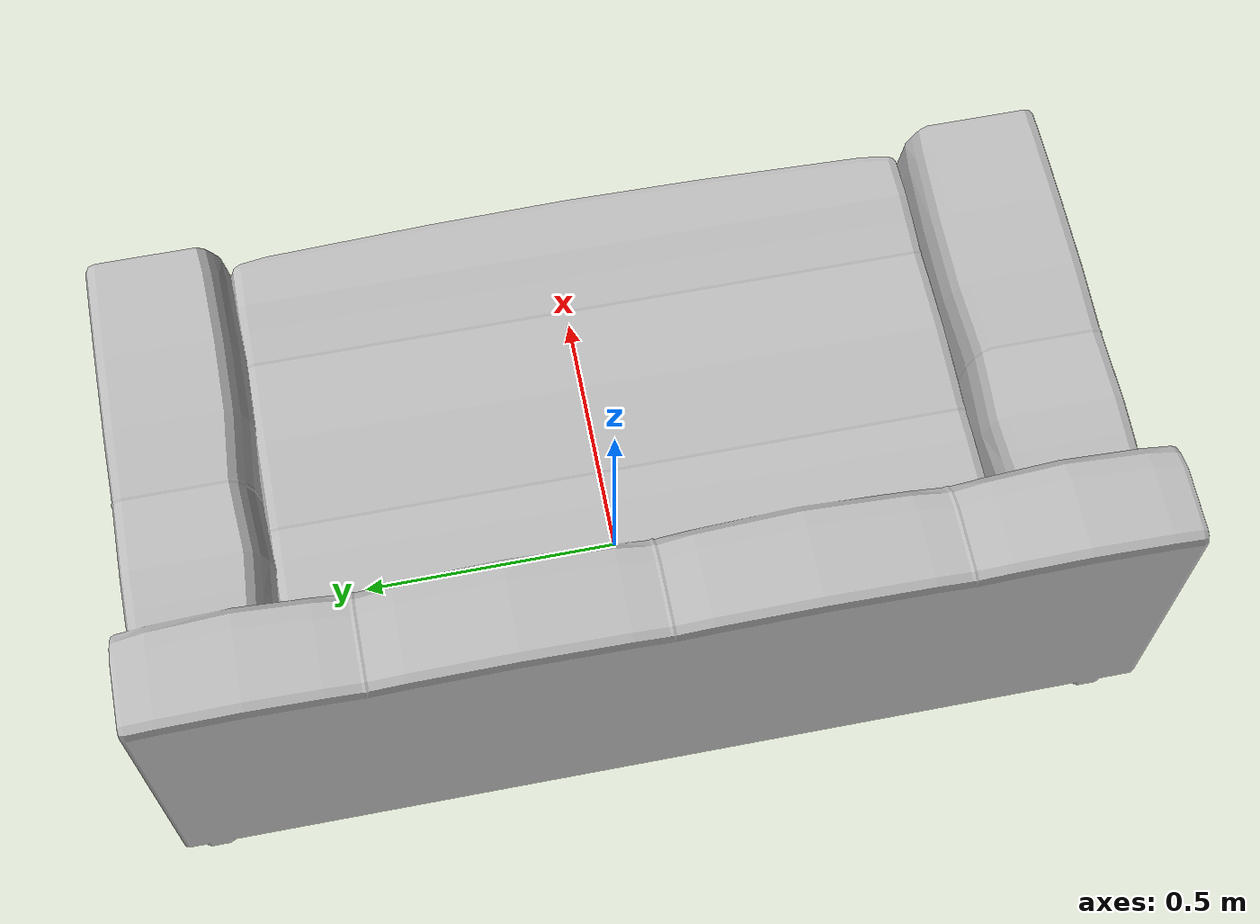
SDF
<?xml version='1.0'?>
<sdf version='1.4'>
  <model name='64'>
    <pose>0 0 0 0 0 0</pose>
    <static>true</static>
    <link name='link'>
      <collision name='collision'>
        <pose>0 0 0 0 0 0</pose>
        <geometry>
          <box>
            <size>1.01 1.78046 2</size>
          </box>
        </geometry>
      </collision>
      <visual name='visual'>
        <pose>0 0 0 0 0 0</pose>
        <geometry>
          <mesh><uri>model://64/64.dae</uri></mesh>
        </geometry>
      </visual>
    </link>
  </model>
</sdf>
